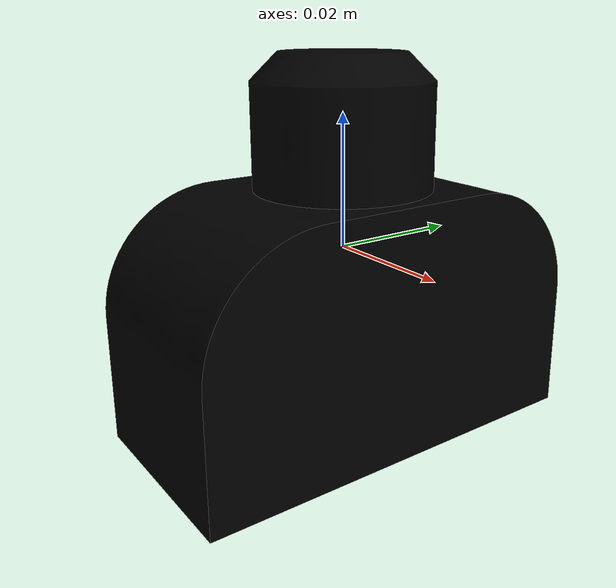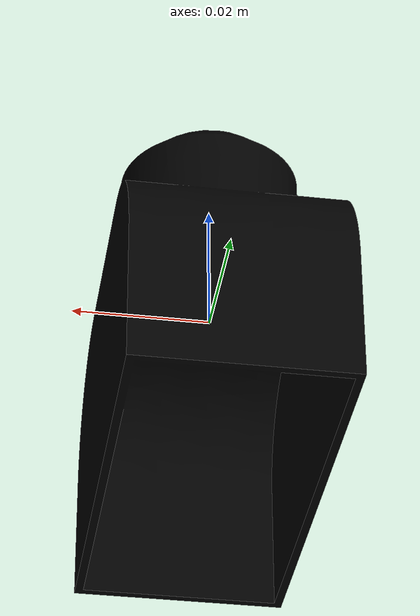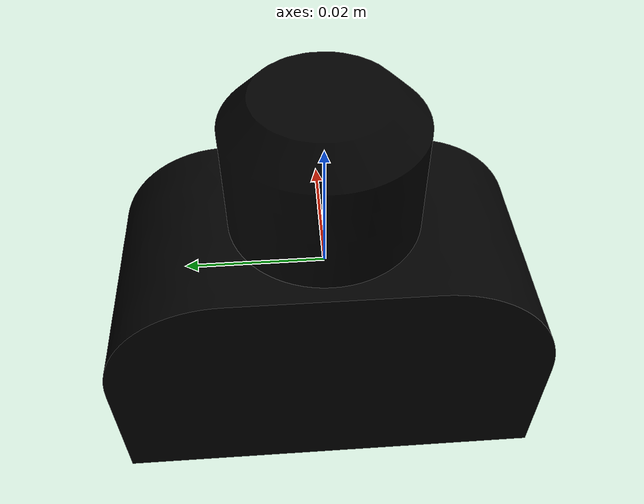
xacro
<?xml version="1.0" encoding="utf-8"?>
<robot name="brick1" xmlns:xacro="http://ros.org/wiki/xacro">

<material name="Black">
<color rgba="${0/255} ${0/255} ${0/255} 1.0"/>
</material>

<link name="X1-Y2-Z2-TWINFILLET">
        <inertial>
	    <mass value="0.1"/>
	    <inertia ixx="0.001" ixy="0.0" ixz="0.0" iyy="0.001" iyz="0.0" izz="0.001"/>
        </inertial>

	<visual > <!-- dont put name otherwise gazebo discards color-->
		<origin xyz="0  0  0" rpy="0  0  0"/>
		<geometry>
		  <mesh filename="package://meshes/X1-Y2-Z2-TWINFILLET.stl" scale="1 1 1"/>
		</geometry>
		<material name="Black"/><!--rviz"/-->

	</visual>
	<collision>
	        <origin xyz="0  0  0" rpy="0  0  0"/>
		<geometry>
		  <mesh filename="package://meshes/X1-Y2-Z2-TWINFILLET.stl" scale="1 1 1"/>
		</geometry>
		<material name="Black"/><!--rviz"/-->
	</collision>

</link>

<gazebo>
    <static>false</static>
</gazebo>

</robot>
